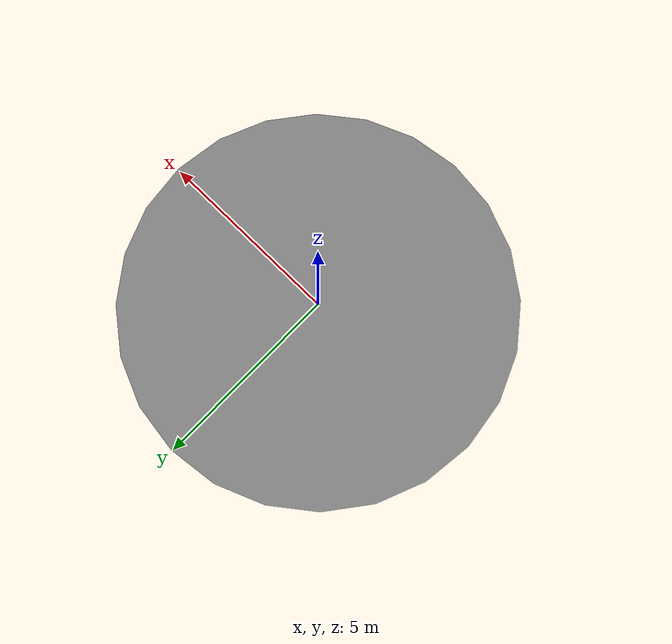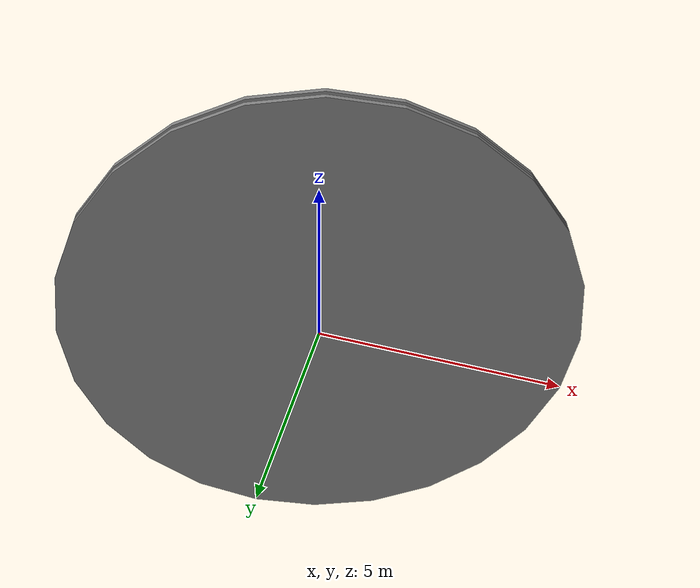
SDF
<?xml version="1.0"?>
<sdf version="1.7">
  <model name="dual_disk_model">
    <!-- Disk 1 -->
    <link name="disk_1">
      <inertial>
        <mass>5.0</mass>
        <inertia>
          <ixx>0.5</ixx>
          <iyy>0.5</iyy>
          <izz>0.5</izz>
        </inertia>
      </inertial>
      <visual name="disk_1_visual">
        <geometry>
          <cylinder>
            <radius>5</radius>
            <length>0.1</length>
          </cylinder>
        </geometry>
        <material>
          <diffuse>0.5 0.5 0.5 1.0</diffuse>
        </material>
      </visual>
      <collision name="disk_1_collision">
        <geometry>
          <cylinder>
            <radius>5</radius>
            <length>0.1</length>
          </cylinder>
        </geometry>
      </collision>
    </link>

    <!-- Frame for Disk 1 Center -->
    <frame name="disk_1_center">
      <pose relative_to="disk_1">0 0 0 0 0 0</pose>
    </frame>

    <!-- Disk 2 -->
    <link name="disk_2">
      <pose>0 0 0.2 0 0 0</pose>
      <inertial>
        <mass>5.0</mass>
        <inertia>
          <ixx>0.5</ixx>
          <iyy>0.5</iyy>
          <izz>0.5</izz>
        </inertia>
      </inertial>
      <visual name="disk_2_visual">
        <geometry>
          <cylinder>
            <radius>5</radius>
            <length>0.1</length>
          </cylinder>
        </geometry>
        <material>
          <diffuse>0.5 0.5 0.5 1.0</diffuse>
        </material>
      </visual>
      <collision name="disk_2_collision">
        <geometry>
          <cylinder>
            <radius>5</radius>
            <length>0.1</length>
          </cylinder>
        </geometry>
      </collision>
    </link>

    <!-- Frame for Disk 2 Center -->
    <frame name="disk_2_center">
      <pose relative_to="disk_2">0 0 0 0 0 0</pose>
    </frame>

    <!-- Revolute joint between disk_1 and disk_2 -->
    <joint name="disk_joint" type="revolute">
      <parent>disk_1</parent>
      <child>disk_2</child>
      <axis>
        <xyz>0 0 1</xyz>
        <limit>
          <lower>-1e16</lower>
          <upper>1e16</upper>
        </limit>
      </axis>
    </joint>
  </model>
</sdf>
